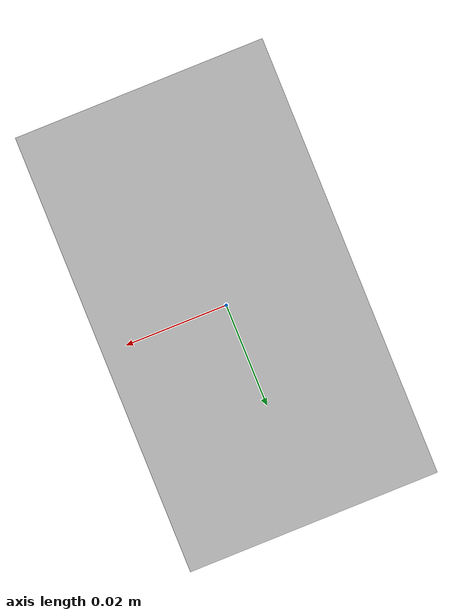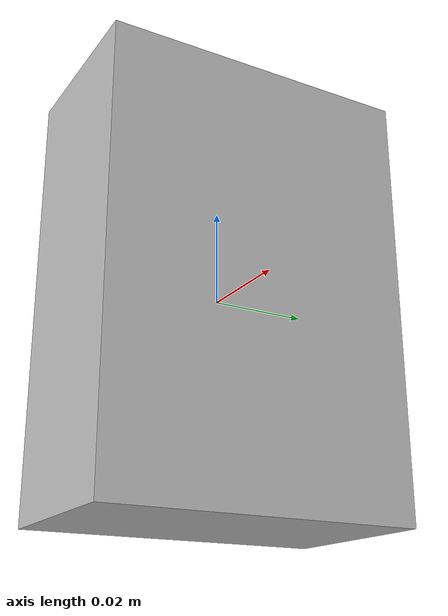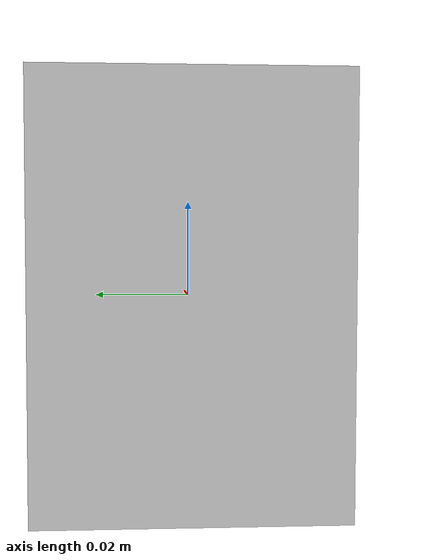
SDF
<?xml version="1.0" ?>
<sdf version="1.4">
  <model name="dove_beauty_bar">
  <static>true</static>
  <!-- Give the base link a unique name -->
  <link name="base">

    <!-- Offset the base by half the lenght of the cylinder -->
    <inertial>
        <pose>0 0 0 0 0 0</pose>
        <mass>0.135</mass>
    </inertial>
    <collision name="base_collision">
      <geometry>
	<mesh>
		<uri>model://dove_beauty_bar/meshes/dove_beauty_bar.dae</uri>
	</mesh>
     </geometry>
    </collision>

    <!-- The visual is mostly a copy of the collision -->
    <visual name="base_visual">
      <geometry>
	<mesh>
		<uri>model://dove_beauty_bar/meshes/dove_beauty_bar.dae</uri>
	</mesh>
      </geometry>
    </visual>
  </link>
</model>
</sdf>
